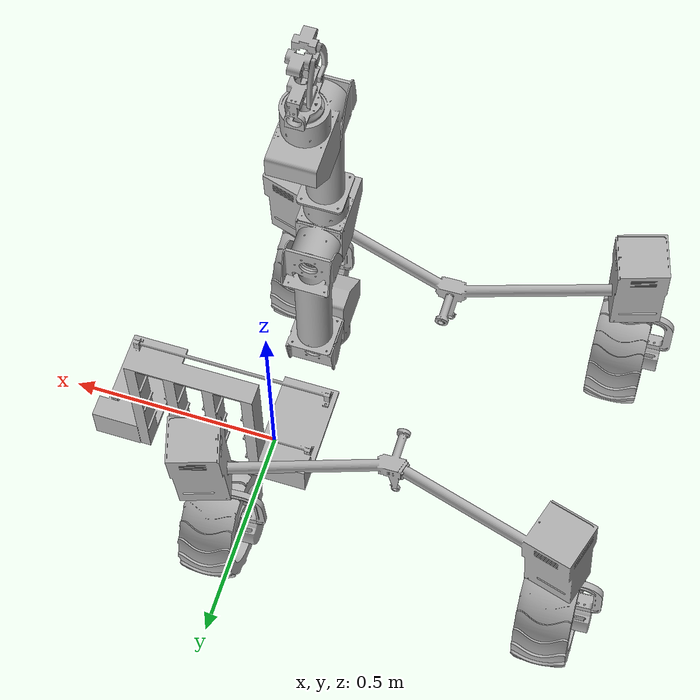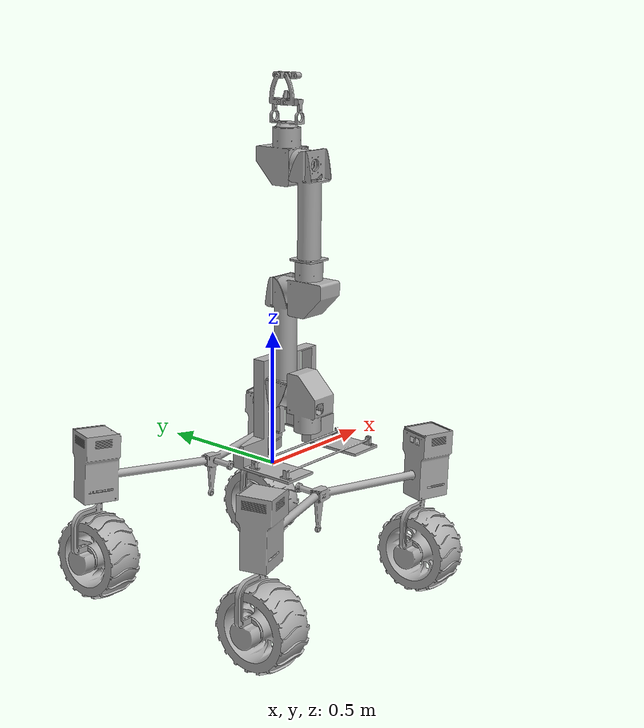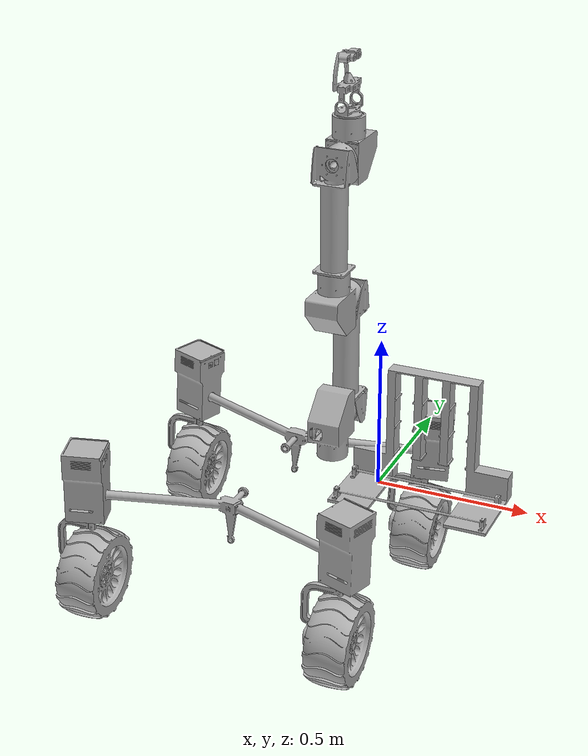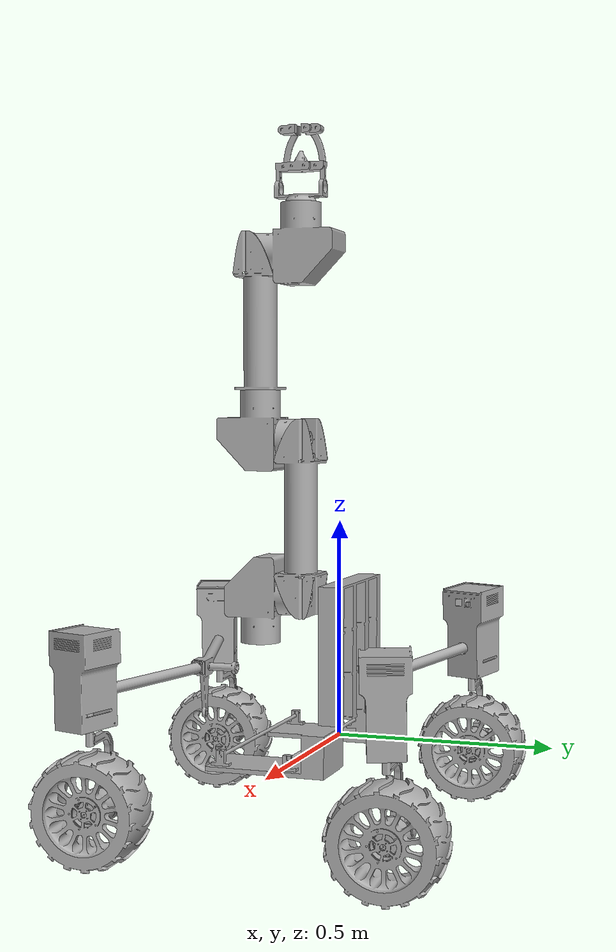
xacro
<?xml version="1.0"?>
<robot xmlns:xacro="http://www.ros.org/wiki/xacro" name="onyx">
    <xacro:arg name="initial_positions_file" default="initial_positions.yaml" />

    <!-- Import kerby urdf file -->
    <xacro:include filename="$(find new_description)/urdf/onyx.urdf.xacro" />

    <!-- Import control_xacro -->
    <xacro:include filename="kerby.ros2_control.xacro" />

    <xacro:kerby_ros2_control name="KerbyArmSystem" initial_positions_file="$(arg initial_positions_file)"/>

</robot>

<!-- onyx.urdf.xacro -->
<robot name="onyx" xmlns:xacro="http://www.ros.org/wiki/xacro">

<xacro:include filename="$(find new_description)/urdf/body.urdf.xacro" />

<xacro:property name="rpm_to_Radps" value="${2*pi/60.0}" />     <!-- rotations per minute to Rad per second conversion -->
<xacro:property name="velocity_scaling" value="1.0" />     <!-- allows to scale all max velocities down at once -->

<xacro:macro name="joint_limits" params="lower:=0.0 upper:=0.0 velocity:=${rpm_to_Radps} effort:=100.0">
  <limit lower="${lower}" upper="${upper}" velocity="${velocity}" effort="${effort}"/>
</xacro:macro>

<xacro:property name="joint1_limits">
  <xacro:joint_limits lower="${-pi}" upper="${pi}" velocity="${1.83 * rpm_to_Radps * velocity_scaling}" />
</xacro:property>

<xacro:property name="joint2_limits">
  <xacro:joint_limits lower="${-pi}" upper="${pi}" velocity="${1.377 * rpm_to_Radps * velocity_scaling}" />
</xacro:property>

<xacro:property name="joint3_limits">
  <xacro:joint_limits lower="${-pi}" upper="${pi}" velocity="${1.377 * rpm_to_Radps * velocity_scaling}" />
</xacro:property>

<xacro:property name="joint4_limits">
  <xacro:joint_limits lower="${-3/2*pi}" upper="${3/2*pi}" velocity="${1.83 * rpm_to_Radps * velocity_scaling}" />
</xacro:property>

<xacro:property name="joint5_limits">
  <xacro:joint_limits lower="${-pi}" upper="${pi}" velocity="${1.83 * rpm_to_Radps * velocity_scaling}" />
</xacro:property>

<xacro:property name="joint6_limits">
  <xacro:joint_limits lower="${-3/2*pi}" upper="${3/2*pi}" velocity="${1.83 * rpm_to_Radps * velocity_scaling}" />
</xacro:property>

<xacro:property name="finger_limits">
  <xacro:joint_limits lower="${-pi}" upper="${pi}" velocity="${10 * rpm_to_Radps}" />
</xacro:property>

<link name="link1">
  <inertial>
    <origin xyz="0.00019343861423741504 0.02168276319253362 0.10154404613782692" rpy="0 0 0"/>
    <mass value="4.6341269008415775"/>
    <inertia ixx="0.028645" iyy="0.020818" izz="0.018526" ixy="9.3e-05" iyz="-0.002659" ixz="8e-06"/>
  </inertial>
  <visual>
    <origin xyz="0.07 0.2225 -0.195" rpy="0 0 0"/>
    <geometry>
      <mesh filename="file://$(find new_description)/meshes/1._J1J2_v2_v2_1.stl" scale="0.001 0.001 0.001"/>
    </geometry>
    <material name="silver"/>
  </visual>
  <collision>
    <origin xyz="0.07 0.2225 -0.195" rpy="0 0 0"/>
    <geometry>
      <mesh filename="file://$(find new_description)/meshes/1._J1J2_v2_v2_1.stl" scale="0.001 0.001 0.001"/>
    </geometry>
  </collision>
</link>

<link name="link2">
  <inertial>
    <origin xyz="-1.3322676295501878e-15 -0.011073644011486264 0.18649999999999678" rpy="0 0 0"/>
    <mass value="3.117767835019512"/>
    <inertia ixx="0.067945" iyy="0.069755" izz="0.005983" ixy="0.0" iyz="-0.0" ixz="0.0"/>
  </inertial>
  <visual>
    <origin xyz="0.07 0.104 -0.3135" rpy="0 0 0"/>
    <geometry>
      <mesh filename="file://$(find new_description)/meshes/1.1_bras_1_single_c_v3_1.stl" scale="0.001 0.001 0.001"/>
    </geometry>
    <material name="silver"/>
  </visual>
  <collision>
    <origin xyz="0.07 0.104 -0.3135" rpy="0 0 0"/>
    <geometry>
      <mesh filename="file://$(find new_description)/meshes/1.1_bras_1_single_c_v3_1.stl" scale="0.001 0.001 0.001"/>
    </geometry>
  </collision>
</link>

<link name="link3">
  <inertial>
    <origin xyz="0.00019343861423579134 -0.101544046137815 0.021682763192532706" rpy="0 0 0"/>
    <mass value="4.6341269008415775"/>
    <inertia ixx="0.028645" iyy="0.018526" izz="0.020818" ixy="-8e-06" iyz="0.002659" ixz="9.3e-05"/>
  </inertial>
  <visual>
    <origin xyz="0.07 0.104 -0.6865" rpy="0 0 0"/>
    <geometry>
      <mesh filename="file://$(find new_description)/meshes/1._J1J2_v2_v2_2.stl" scale="0.001 0.001 0.001"/>
    </geometry>
    <material name="silver"/>
  </visual>
  <collision>
    <origin xyz="0.07 0.104 -0.6865" rpy="0 0 0"/>
    <geometry>
      <mesh filename="file://$(find new_description)/meshes/1._J1J2_v2_v2_2.stl" scale="0.001 0.001 0.001"/>
    </geometry>
  </collision>
</link>

<link name="link4">
  <inertial>
    <origin xyz="4.5352610555937645e-14 -0.0030701810090929815 0.18321907839266705" rpy="0 0 0"/>
    <mass value="2.501356467163731"/>
    <inertia ixx="0.0397" iyy="0.040591" izz="0.004603" ixy="0.0" iyz="0.001154" ixz="-0.0"/>
  </inertial>
  <visual>
    <origin xyz="0.07 0.2225 -0.805" rpy="0 0 0"/>
    <geometry>
      <mesh filename="file://$(find new_description)/meshes/1._tube_2_single_component_v2_1.stl" scale="0.001 0.001 0.001"/>
    </geometry>
    <material name="silver"/>
  </visual>
  <collision>
    <origin xyz="0.07 0.2225 -0.805" rpy="0 0 0"/>
    <geometry>
      <mesh filename="file://$(find new_description)/meshes/1._tube_2_single_component_v2_1.stl" scale="0.001 0.001 0.001"/>
    </geometry>
  </collision>
</link>

<link name="link5">
  <inertial>
    <origin xyz="-0.00019343861423758157 0.10154404613786167 0.021682763192527377" rpy="0 0 0"/>
    <mass value="4.6341269008415775"/>
    <inertia ixx="0.028645" iyy="0.018526" izz="0.020818" ixy="-8e-06" iyz="-0.002659" ixz="-9.3e-05"/>
  </inertial>
  <visual>
    <origin xyz="0.07 0.2385 -1.128" rpy="0 0 0"/>
    <geometry>
      <mesh filename="file://$(find new_description)/meshes/1._J1J2_v2_v2_3.stl" scale="0.001 0.001 0.001"/>
    </geometry>
    <material name="silver"/>
  </visual>
  <collision>
    <origin xyz="0.07 0.2385 -1.128" rpy="0 0 0"/>
    <geometry>
      <mesh filename="file://$(find new_description)/meshes/1._J1J2_v2_v2_3.stl" scale="0.001 0.001 0.001"/>
    </geometry>
  </collision>
</link>

<link name="link6">
  <inertial>
    <origin xyz="-0.0003178609482202416 -0.000257514080764229 0.06769985638413734" rpy="0 0 0"/>
    <mass value="0.236737000660016"/>
    <inertia ixx="0.000328" iyy="0.000476" izz="0.00022" ixy="0.0" iyz="1e-06" ixz="-4e-06"/>
  </inertial>
  <visual>
    <origin xyz="0.07 0.12 -1.2465" rpy="0 0 0"/>
    <geometry>
      <mesh filename="file://$(find new_description)/meshes/Gripper_no_torque_sensor_v2_1.stl" scale="0.001 0.001 0.001"/>
    </geometry>
    <material name="silver"/>
  </visual>
  <collision>
    <origin xyz="0.07 0.12 -1.2465" rpy="0 0 0"/>
    <geometry>
      <mesh filename="file://$(find new_description)/meshes/Gripper_no_torque_sensor_v2_1.stl" scale="0.001 0.001 0.001"/>
    </geometry>
  </collision>
</link>

<link name="Arm_A_v6_2">
  <inertial>
    <origin xyz="0.01895133656783434 0.003750000076247456 0.034431297042308184" rpy="0 0 0"/>
    <mass value="0.11091056155247334"/>
    <inertia ixx="0.000106" iyy="0.000118" izz="1.4e-05" ixy="-0.0" iyz="-0.0" ixz="1.1e-05"/>
  </inertial>
  <visual>
    <origin xyz="0.055 0.0975 -1.328" rpy="0 0 0"/>
    <geometry>
      <mesh filename="file://$(find new_description)/meshes/Arm_A_v6_2.stl" scale="0.001 0.001 0.001"/>
    </geometry>
    <material name="silver"/>
  </visual>
  <collision>
    <origin xyz="0.055 0.0975 -1.328" rpy="0 0 0"/>
    <geometry>
      <mesh filename="file://$(find new_description)/meshes/Arm_A_v6_2.stl" scale="0.001 0.001 0.001"/>
    </geometry>
  </collision>
</link>

<link name="Arm_A_v6_1">
  <inertial>
    <origin xyz="-0.018951336567834404 0.0037499999238455595 0.034431297042308406" rpy="0 0 0"/>
    <mass value="0.11091056155247334"/>
    <inertia ixx="0.000106" iyy="0.000118" izz="1.4e-05" ixy="-0.0" iyz="0.0" ixz="-1.1e-05"/>
  </inertial>
  <visual>
    <origin xyz="0.085 0.0975 -1.328" rpy="0 0 0"/>
    <geometry>
      <mesh filename="file://$(find new_description)/meshes/Arm_A_v6_1.stl" scale="0.001 0.001 0.001"/>
    </geometry>
    <material name="silver"/>
  </visual>
  <collision>
    <origin xyz="0.085 0.0975 -1.328" rpy="0 0 0"/>
    <geometry>
      <mesh filename="file://$(find new_description)/meshes/Arm_A_v6_1.stl" scale="0.001 0.001 0.001"/>
    </geometry>
  </collision>
</link>

<link name="Finger_v1_2">
  <inertial>
    <origin xyz="0.009336732205807656 -0.02249999638344631 8.540730686679154e-06" rpy="0 0 0"/>
    <mass value="0.21086382762249625"/>
    <inertia ixx="3.4e-05" iyy="3.6e-05" izz="5.6e-05" ixy="0.0" iyz="0.0" ixz="0.0"/>
  </inertial>
  <visual>
    <origin xyz="0.052082 0.0975 -1.41458" rpy="0 0 0"/>
    <geometry>
      <mesh filename="file://$(find new_description)/meshes/Finger_v1_2.stl" scale="0.001 0.001 0.001"/>
    </geometry>
    <material name="silver"/>
  </visual>
  <collision>
    <origin xyz="0.052082 0.0975 -1.41458" rpy="0 0 0"/>
    <geometry>
      <mesh filename="file://$(find new_description)/meshes/Finger_v1_2.stl" scale="0.001 0.001 0.001"/>
    </geometry>
  </collision>
</link>

<link name="Finger_v1_1">
  <inertial>
    <origin xyz="-0.009336732205807885 -0.02250000361645496 8.540730686901199e-06" rpy="0 0 0"/>
    <mass value="0.21086382762249625"/>
    <inertia ixx="3.4e-05" iyy="3.6e-05" izz="5.6e-05" ixy="0.0" iyz="-0.0" ixz="-0.0"/>
  </inertial>
  <visual>
    <origin xyz="0.087918 0.0975 -1.41458" rpy="0 0 0"/>
    <geometry>
      <mesh filename="file://$(find new_description)/meshes/Finger_v1_1.stl" scale="0.001 0.001 0.001"/>
    </geometry>
    <material name="silver"/>
  </visual>
  <collision>
    <origin xyz="0.087918 0.0975 -1.41458" rpy="0 0 0"/>
    <geometry>
      <mesh filename="file://$(find new_description)/meshes/Finger_v1_1.stl" scale="0.001 0.001 0.001"/>
    </geometry>
  </collision>
</link>

<joint name="hd_joint1" type="revolute">
  <origin xyz="-0.07 -0.2225 0.195" rpy="0 0 0"/>
  <parent link="base_link"/>
  <child link="link1"/>
  <axis xyz="0.0 0.0 -1.0"/>
  <xacro:insert_block name="joint1_limits"/>
</joint>

<joint name="hd_joint2" type="revolute">
  <origin xyz="0.0 0.1185 0.1185" rpy="0 0 0"/>
  <parent link="link1"/>
  <child link="link2"/>
  <axis xyz="-0.0 -1.0 -0.0"/>
  <xacro:insert_block name="joint2_limits"/>
</joint>

<joint name="hd_joint3" type="revolute">
  <origin xyz="0.0 0.0 0.373" rpy="0 0 0"/>
  <parent link="link2"/>
  <child link="link3"/>
  <axis xyz="0.0 1.0 -0.0"/>
  <xacro:insert_block name="joint3_limits"/>
</joint>

<joint name="hd_joint4" type="revolute">
  <origin xyz="0.0 -0.1185 0.1185" rpy="0 0 0"/>
  <parent link="link3"/>
  <child link="link4"/>
  <axis xyz="-0.0 -0.0 -1.0"/>
  <xacro:insert_block name="joint4_limits"/>
</joint>

<joint name="hd_joint5" type="revolute">
  <origin xyz="0.0 -0.016 0.323" rpy="0 0 0"/>
  <parent link="link4"/>
  <child link="link5"/>
  <axis xyz="0.0 -1.0 0.0"/>
  <xacro:insert_block name="joint5_limits"/>
</joint>

<joint name="hd_joint6" type="revolute">
  <origin xyz="0.0 0.1185 0.1185" rpy="0 0 ${pi/2}"/>
  <parent link="link5"/>
  <child link="link6"/>
  <axis xyz="-0.0 -0.0 -1.0"/>
  <xacro:insert_block name="joint6_limits"/>
</joint>

<joint name="finger_joint1" type="continuous">
  <origin xyz="0.015 0.0225 0.0815" rpy="0 0 0"/>
  <parent link="link6"/>
  <child link="Arm_A_v6_2"/>
  <axis xyz="0.0 -1.0 0.0"/>
</joint>

<joint name="finger_joint2" type="continuous">
  <origin xyz="-0.015 0.0225 0.0815" rpy="0 0 0"/>
  <parent link="link6"/>
  <child link="Arm_A_v6_1"/>
  <axis xyz="0.0 -1.0 0.0"/>
  <mimic joint="finger_joint1" multiplier="-1"/>
</joint>

<joint name="finger_joint3" type="continuous">
  <origin xyz="0.002918 0.0 0.08658" rpy="0 0 0"/>
  <parent link="Arm_A_v6_2"/>
  <child link="Finger_v1_2"/>
  <axis xyz="-0.0 1.0 -0.0"/>
  <mimic joint="finger_joint1" multiplier="1"/>
</joint>

<joint name="finger_joint4" type="continuous">
  <origin xyz="-0.002918 0.0 0.08658" rpy="0 0 0"/>
  <parent link="Arm_A_v6_1"/>
  <child link="Finger_v1_1"/>
  <axis xyz="0.0 1.0 -0.0"/>
  <mimic joint="finger_joint1" multiplier="-1"/>
</joint>

</robot>

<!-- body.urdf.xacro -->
<robot name="onyx" xmlns:xacro="http://www.ros.org/wiki/xacro">

<xacro:include filename="$(find new_description)/urdf/materials.xacro" />

<link name="base_link">
  <inertial>
    <origin xyz="-0.3584749692611154 -0.22247254185875498 0.1674507190539034" rpy="0 0 0"/>
    <mass value="45.44445566983739"/>
    <inertia ixx="3.256638" iyy="4.634323" izz="3.278048" ixy="0.000512" iyz="0.000365" ixz="0.549494"/>
  </inertial>
  <visual>
    <origin xyz="0 0 0" rpy="0 0 0"/>
    <geometry>
      <mesh filename="file://$(find new_description)/meshes/base_link.stl" scale="0.001 0.001 0.001"/>
    </geometry>
    <material name="silver"/>
  </visual>
  <collision>
    <origin xyz="0 0 0" rpy="0 0 0"/>
    <geometry>
      <mesh filename="file://$(find new_description)/meshes/base_link.stl" scale="0.001 0.001 0.001"/>
    </geometry>
  </collision>
</link>

<link name="1._pivot_steering_v2_1">
  <inertial>
    <origin xyz="0.0013327059020719068 -0.14344220376800904 0.041707356384150185" rpy="0 0 0"/>
    <mass value="9.811514021273375"/>
    <inertia ixx="0.064211" iyy="1.826132" izz="1.795757" ixy="2.9e-05" iyz="0.001127" ixz="0.044969"/>
  </inertial>
  <visual>
    <origin xyz="0.3 0.448 -0.09" rpy="0 0 0"/>
    <geometry>
      <mesh filename="file://$(find new_description)/meshes/1._pivot_steering_v2_1.stl" scale="0.001 0.001 0.001"/>
    </geometry>
    <material name="silver"/>
  </visual>
  <collision>
    <origin xyz="0.3 0.448 -0.09" rpy="0 0 0"/>
    <geometry>
      <mesh filename="file://$(find new_description)/meshes/1._pivot_steering_v2_1.stl" scale="0.001 0.001 0.001"/>
    </geometry>
  </collision>
</link>

<link name="1._pivot_steering_v2_2">
  <inertial>
    <origin xyz="0.0023074010701228387 0.14344220376800906 0.041664800274108515" rpy="0 0 0"/>
    <mass value="9.811514021273375"/>
    <inertia ixx="0.069555" iyy="1.826132" izz="1.790413" ixy="-6.9e-05" iyz="-0.001125" ixz="0.106054"/>
  </inertial>
  <visual>
    <origin xyz="0.3 -0.003 -0.091" rpy="0 0 0"/>
    <geometry>
      <mesh filename="file://$(find new_description)/meshes/1._pivot_steering_v2_2.stl" scale="0.001 0.001 0.001"/>
    </geometry>
    <material name="silver"/>
  </visual>
  <collision>
    <origin xyz="0.3 -0.003 -0.091" rpy="0 0 0"/>
    <geometry>
      <mesh filename="file://$(find new_description)/meshes/1._pivot_steering_v2_2.stl" scale="0.001 0.001 0.001"/>
    </geometry>
  </collision>
</link>

<link name="1._driving_v2_1">
  <inertial>
    <origin xyz="-0.05336323228963791 -0.001790241868721898 -0.23611207721402075" rpy="0 0 0"/>
    <mass value="2.150656122682915"/>
    <inertia ixx="0.013956" iyy="0.016641" izz="0.003749" ixy="-0.0001" iyz="-6.9e-05" ixz="-0.002335"/>
  </inertial>
  <visual>
    <origin xyz="-0.116011 0.591408 -0.062747" rpy="0 0 0"/>
    <geometry>
      <mesh filename="file://$(find new_description)/meshes/1._driving_v2_1.stl" scale="0.001 0.001 0.001"/>
    </geometry>
    <material name="silver"/>
  </visual>
  <collision>
    <origin xyz="-0.116011 0.591408 -0.062747" rpy="0 0 0"/>
    <geometry>
      <mesh filename="file://$(find new_description)/meshes/1._driving_v2_1.stl" scale="0.001 0.001 0.001"/>
    </geometry>
  </collision>
</link>

<link name="1._driving_v2_3">
  <inertial>
    <origin xyz="-0.05336302206809562 -0.001790241868722342 -0.23611208152895571" rpy="0 0 0"/>
    <mass value="2.150656122682915"/>
    <inertia ixx="0.013956" iyy="0.016641" izz="0.003749" ixy="-0.0001" iyz="-6.9e-05" ixz="-0.002335"/>
  </inertial>
  <visual>
    <origin xyz="0.716864 0.591408 -0.084264" rpy="0 0 0"/>
    <geometry>
      <mesh filename="file://$(find new_description)/meshes/1._driving_v2_3.stl" scale="0.001 0.001 0.001"/>
    </geometry>
    <material name="silver"/>
  </visual>
  <collision>
    <origin xyz="0.716864 0.591408 -0.084264" rpy="0 0 0"/>
    <geometry>
      <mesh filename="file://$(find new_description)/meshes/1._driving_v2_3.stl" scale="0.001 0.001 0.001"/>
    </geometry>
  </collision>
</link>

<link name="1._driving_v2_2">
  <inertial>
    <origin xyz="-0.06173523819166341 -0.0017906129843301144 -0.23406282227931077" rpy="0 0 0"/>
    <mass value="2.150656122682915"/>
    <inertia ixx="0.013777" iyy="0.016641" izz="0.003928" ixy="-0.000102" iyz="-6.5e-05" ixz="-0.002692"/>
  </inertial>
  <visual>
    <origin xyz="-0.114777 -0.146408 -0.048954" rpy="0 0 0"/>
    <geometry>
      <mesh filename="file://$(find new_description)/meshes/1._driving_v2_2.stl" scale="0.001 0.001 0.001"/>
    </geometry>
    <material name="silver"/>
  </visual>
  <collision>
    <origin xyz="-0.114777 -0.146408 -0.048954" rpy="0 0 0"/>
    <geometry>
      <mesh filename="file://$(find new_description)/meshes/1._driving_v2_2.stl" scale="0.001 0.001 0.001"/>
    </geometry>
  </collision>
</link>

<link name="1._driving_v2_4">
  <inertial>
    <origin xyz="-0.061736017683869826 -0.0017906129843305862 -0.2340621183806948" rpy="0 0 0"/>
    <mass value="2.150656122682915"/>
    <inertia ixx="0.013777" iyy="0.016641" izz="0.003928" ixy="-0.000102" iyz="-6.5e-05" ixz="-0.002692"/>
  </inertial>
  <visual>
    <origin xyz="0.716803 -0.146408 -0.100108" rpy="0 0 0"/>
    <geometry>
      <mesh filename="file://$(find new_description)/meshes/1._driving_v2_4.stl" scale="0.001 0.001 0.001"/>
    </geometry>
    <material name="silver"/>
  </visual>
  <collision>
    <origin xyz="0.716803 -0.146408 -0.100108" rpy="0 0 0"/>
    <geometry>
      <mesh filename="file://$(find new_description)/meshes/1._driving_v2_4.stl" scale="0.001 0.001 0.001"/>
    </geometry>
  </collision>
</link>

<link name="1._wheel_simplified_v2_1">
  <inertial>
    <origin xyz="-0.03947205553790728 -0.0013188678711944513 0.0024275550921873112" rpy="0 0 0"/>
    <mass value="23.722548877018745"/>
    <inertia ixx="0.348962" iyy="0.207419" izz="0.207797" ixy="0.004735" iyz="-0.000291" ixz="-0.008717"/>
  </inertial>
  <visual>
    <origin xyz="-0.139795 -0.147791 0.219889" rpy="0 0 0"/>
    <geometry>
      <mesh filename="file://$(find new_description)/meshes/1._wheel_simplified_v2_1.stl" scale="0.001 0.001 0.001"/>
    </geometry>
    <material name="silver"/>
  </visual>
  <collision>
    <origin xyz="-0.139795 -0.147791 0.219889" rpy="0 0 0"/>
    <geometry>
      <mesh filename="file://$(find new_description)/meshes/1._wheel_simplified_v2_1.stl" scale="0.001 0.001 0.001"/>
    </geometry>
  </collision>
</link>

<link name="1._wheel_simplified_v2_3">
  <inertial>
    <origin xyz="-0.03947183503011431 -0.0013188678711952284 0.0024282589908032892" rpy="0 0 0"/>
    <mass value="23.722548877018745"/>
    <inertia ixx="0.348962" iyy="0.207419" izz="0.207797" ixy="0.004735" iyz="-0.000291" ixz="-0.008717"/>
  </inertial>
  <visual>
    <origin xyz="0.691786 -0.147791 0.168735" rpy="0 0 0"/>
    <geometry>
      <mesh filename="file://$(find new_description)/meshes/1._wheel_simplified_v2_3.stl" scale="0.001 0.001 0.001"/>
    </geometry>
    <material name="silver"/>
  </visual>
  <collision>
    <origin xyz="0.691786 -0.147791 0.168735" rpy="0 0 0"/>
    <geometry>
      <mesh filename="file://$(find new_description)/meshes/1._wheel_simplified_v2_3.stl" scale="0.001 0.001 0.001"/>
    </geometry>
  </collision>
</link>

<link name="1._wheel_simplified_v2_4">
  <inertial>
    <origin xyz="-0.039533229871911726 -0.0013184967555868177 0.0010210764613666212" rpy="0 0 0"/>
    <mass value="23.722548877018745"/>
    <inertia ixx="0.349404" iyy="0.207419" izz="0.207356" ixy="0.004742" iyz="-0.000122" ixz="-0.003672"/>
  </inertial>
  <visual>
    <origin xyz="-0.150584 0.590025 0.205035" rpy="0 0 0"/>
    <geometry>
      <mesh filename="file://$(find new_description)/meshes/1._wheel_simplified_v2_4.stl" scale="0.001 0.001 0.001"/>
    </geometry>
    <material name="silver"/>
  </visual>
  <collision>
    <origin xyz="-0.150584 0.590025 0.205035" rpy="0 0 0"/>
    <geometry>
      <mesh filename="file://$(find new_description)/meshes/1._wheel_simplified_v2_4.stl" scale="0.001 0.001 0.001"/>
    </geometry>
  </collision>
</link>

<link name="1._wheel_simplified_v2_2">
  <inertial>
    <origin xyz="-0.03953301965036915 -0.0013184967555871507 0.0010210721464319061" rpy="0 0 0"/>
    <mass value="23.722548877018745"/>
    <inertia ixx="0.349404" iyy="0.207419" izz="0.207356" ixy="0.004742" iyz="-0.000122" ixz="-0.003672"/>
  </inertial>
  <visual>
    <origin xyz="0.682291 0.590025 0.183518" rpy="0 0 0"/>
    <geometry>
      <mesh filename="file://$(find new_description)/meshes/1._wheel_simplified_v2_2.stl" scale="0.001 0.001 0.001"/>
    </geometry>
    <material name="silver"/>
  </visual>
  <collision>
    <origin xyz="0.682291 0.590025 0.183518" rpy="0 0 0"/>
    <geometry>
      <mesh filename="file://$(find new_description)/meshes/1._wheel_simplified_v2_2.stl" scale="0.001 0.001 0.001"/>
    </geometry>
  </collision>
</link>

<joint name="body_joint1" type="fixed">
  <origin xyz="-0.3 -0.448 0.09" rpy="0 0 0"/>
  <parent link="base_link"/>
  <child link="1._pivot_steering_v2_1"/>
  <axis xyz="0.0 1.0 -0.0"/>
</joint>

<joint name="body_joint2" type="fixed">
  <origin xyz="-0.3 0.003 0.091" rpy="0 0 0"/>
  <parent link="base_link"/>
  <child link="1._pivot_steering_v2_2"/>
  <axis xyz="0.0 -1.0 0.0"/>
</joint>

<joint name="body_joint3" type="fixed">
  <origin xyz="0.416011 -0.143408 -0.027253" rpy="0 0 0"/>
  <parent link="1._pivot_steering_v2_1"/>
  <child link="1._driving_v2_1"/>
  <axis xyz="0.025826 0.0 0.999666"/>
</joint>

<joint name="body_joint4" type="fixed">
  <origin xyz="-0.416864 -0.143408 -0.005736" rpy="0 0 0"/>
  <parent link="1._pivot_steering_v2_1"/>
  <child link="1._driving_v2_3"/>
  <axis xyz="-0.025826 -0.0 -0.999666"/>
</joint>

<joint name="body_joint5" type="fixed">
  <origin xyz="0.414777 0.143408 -0.042046" rpy="0 0 0"/>
  <parent link="1._pivot_steering_v2_2"/>
  <child link="1._driving_v2_2"/>
  <axis xyz="-0.061399 0.0 -0.998113"/>
</joint>

<joint name="body_joint6" type="fixed">
  <origin xyz="-0.416803 0.143408 0.009108" rpy="0 0 0"/>
  <parent link="1._pivot_steering_v2_2"/>
  <child link="1._driving_v2_4"/>
  <axis xyz="0.061399 -0.0 0.998113"/>
</joint>

<joint name="body_joint7" type="fixed">
  <origin xyz="0.025018 0.001383 -0.268843" rpy="0 0 0"/>
  <parent link="1._driving_v2_2"/>
  <child link="1._wheel_simplified_v2_1"/>
  <axis xyz="0.997559 0.03333 -0.061365"/>
</joint>

<joint name="body_joint8" type="fixed">
  <origin xyz="0.025017 0.001383 -0.268843" rpy="0 0 0"/>
  <parent link="1._driving_v2_4"/>
  <child link="1._wheel_simplified_v2_3"/>
  <axis xyz="0.997559 0.03333 -0.061365"/>
</joint>

<joint name="body_joint9" type="fixed">
  <origin xyz="0.034573 0.001383 -0.267782" rpy="0 0 0"/>
  <parent link="1._driving_v2_1"/>
  <child link="1._wheel_simplified_v2_4"/>
  <axis xyz="0.999111 0.03333 -0.025812"/>
</joint>

<joint name="body_joint10" type="fixed">
  <origin xyz="0.034573 0.001383 -0.267782" rpy="0 0 0"/>
  <parent link="1._driving_v2_3"/>
  <child link="1._wheel_simplified_v2_2"/>
  <axis xyz="0.999111 0.03333 -0.025812"/>
</joint>

</robot>

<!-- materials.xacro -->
<robot name="onyx" xmlns:xacro="http://www.ros.org/wiki/xacro" >

<material name="silver">
  <color rgba="0.700 0.700 0.700 1.000"/>
</material>

</robot>
